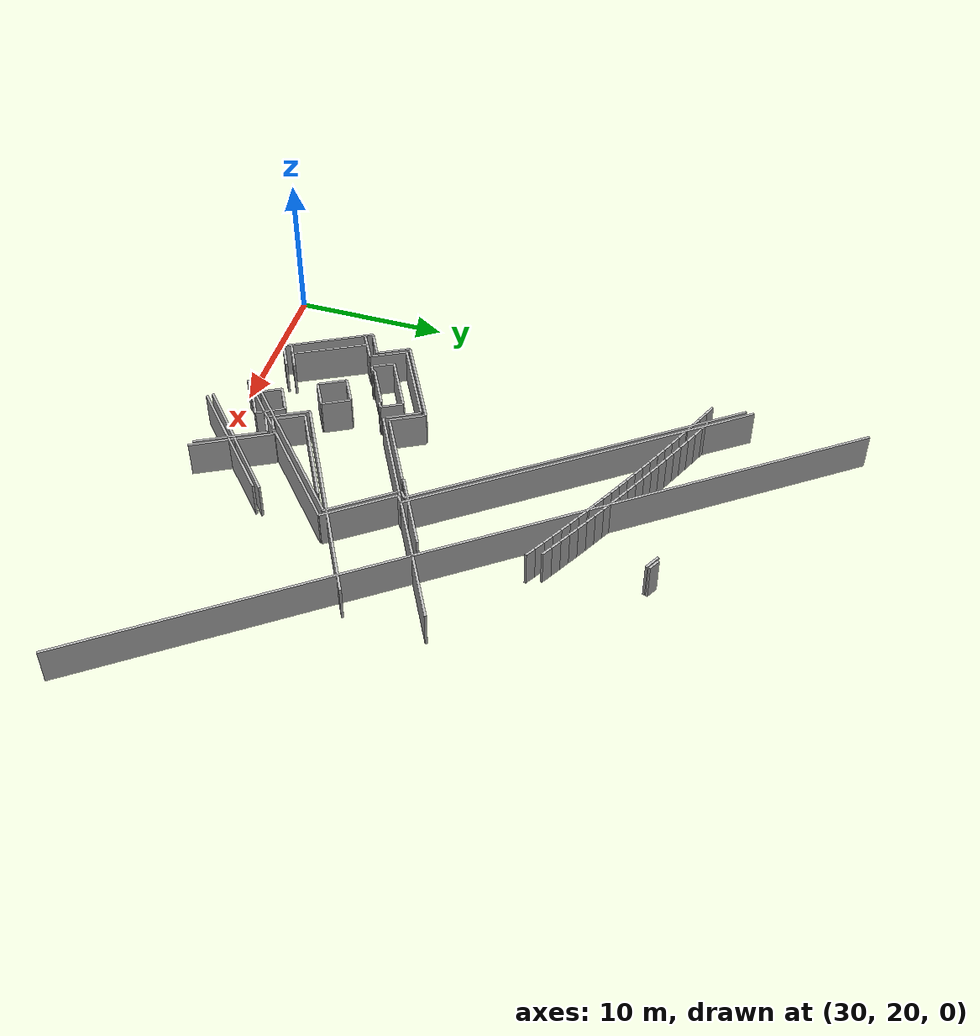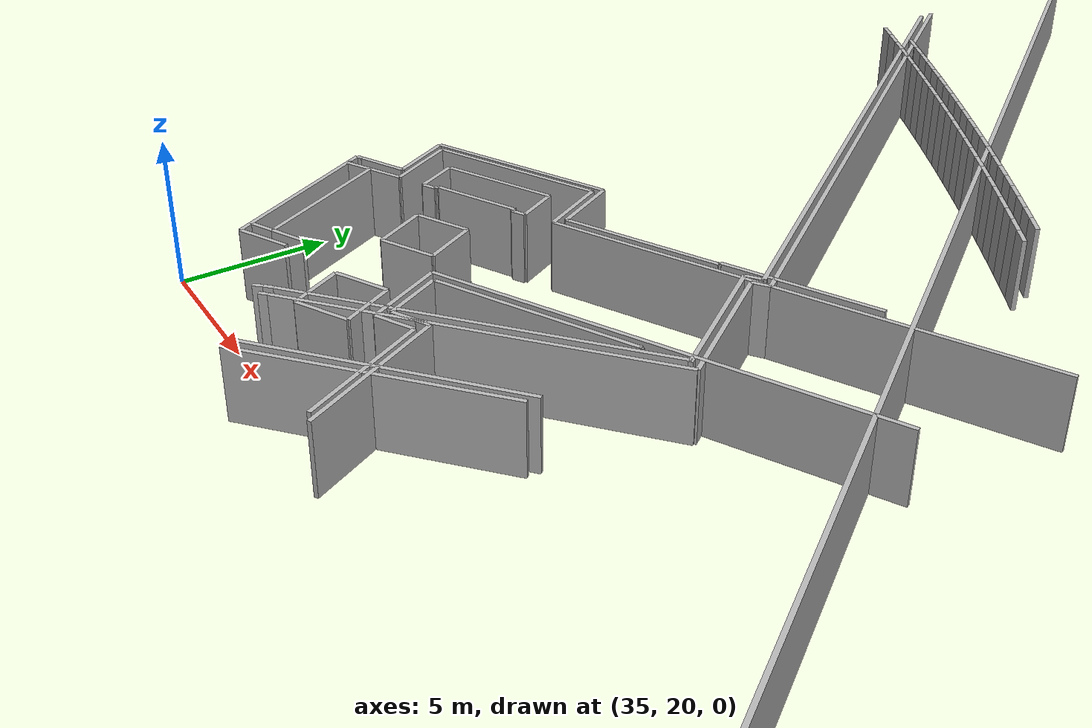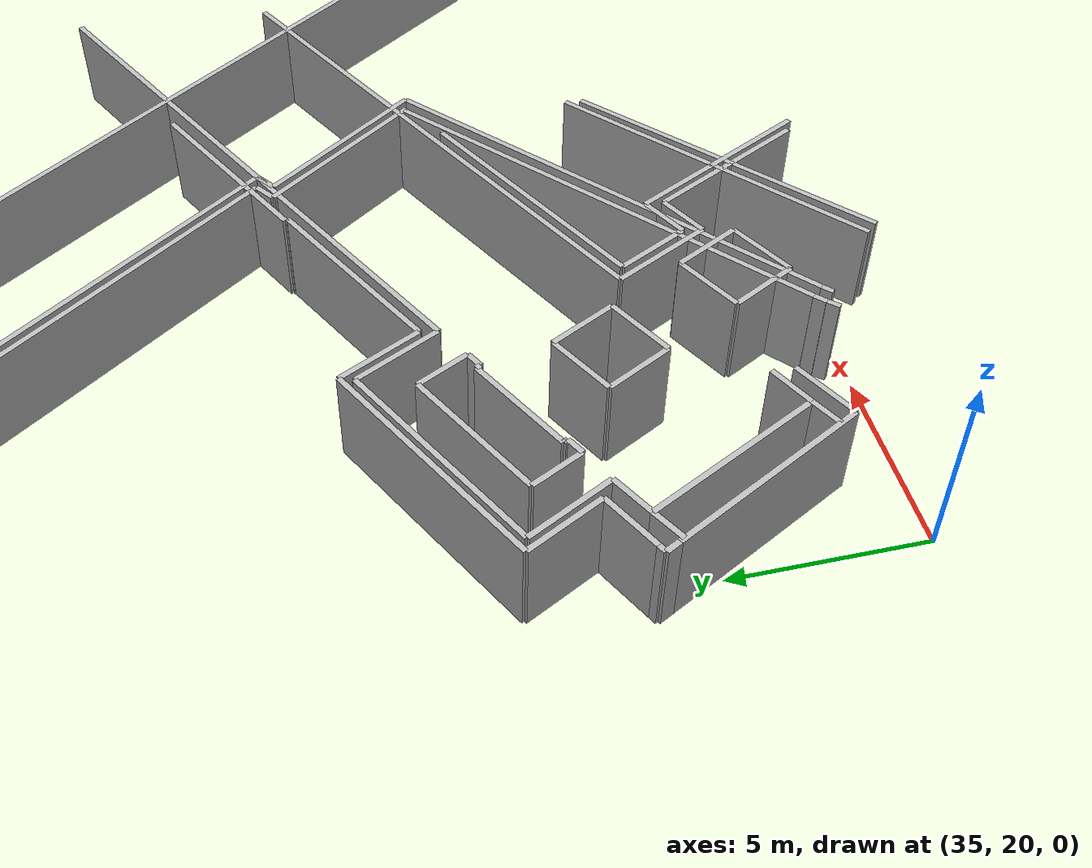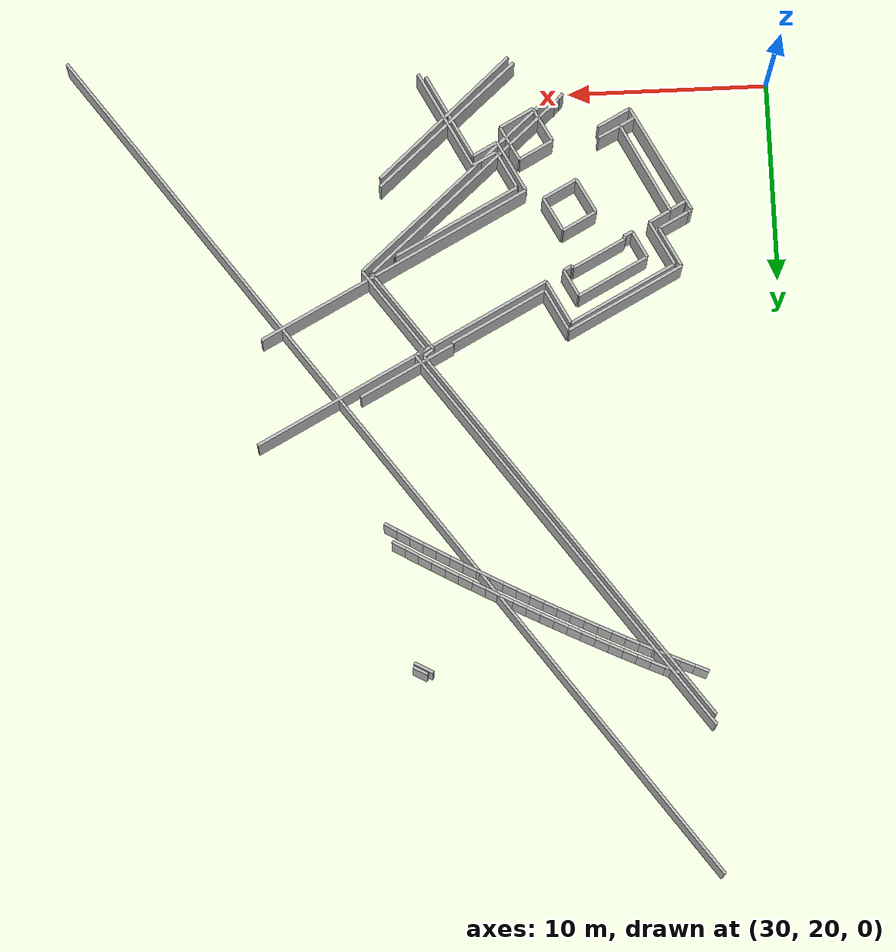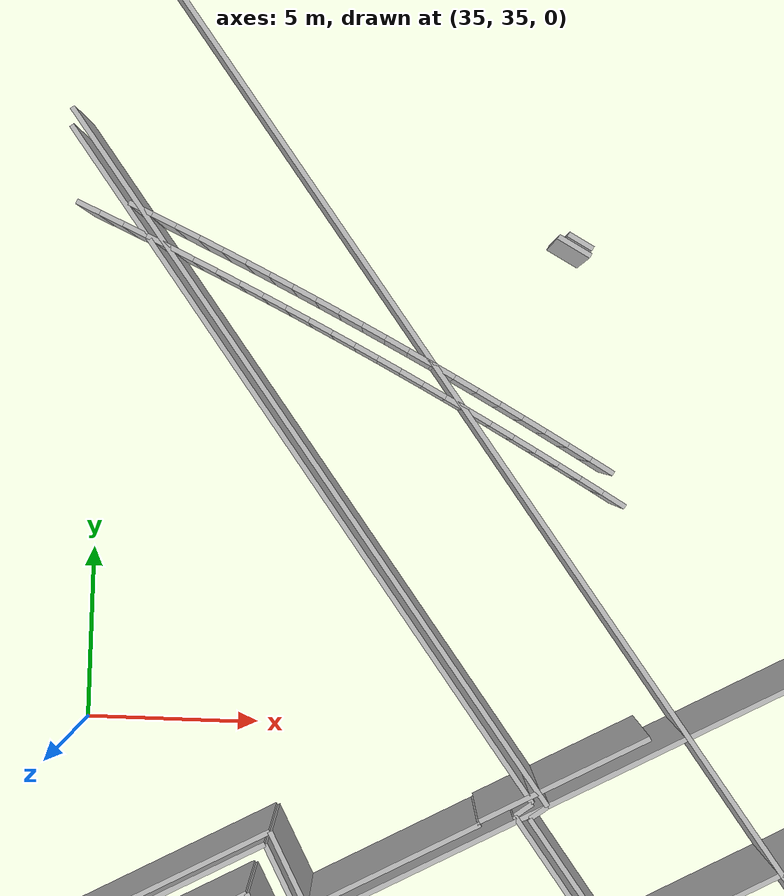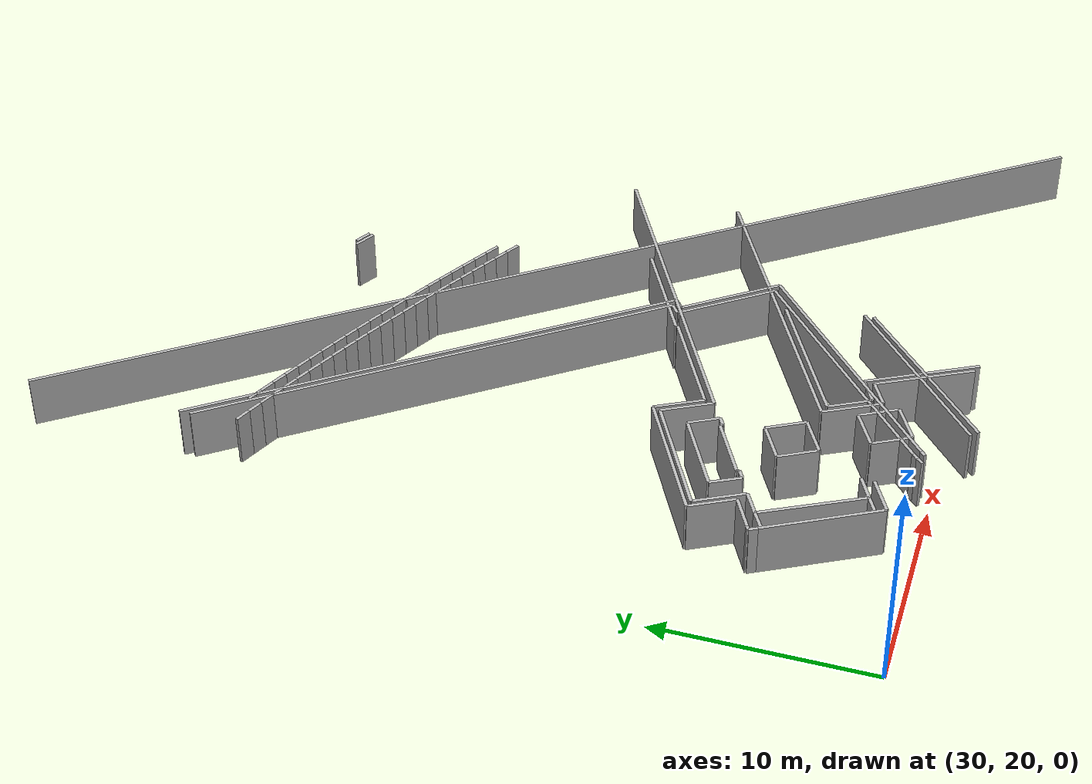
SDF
<sdf version="1.6">
 <model name="sps_0505">
  <static>1</static>
  <allow_auto_disable>0</allow_auto_disable>
  <link name="Wall106">
   <collision name="collision"><geometry><box><size>2.20003 0.15 2.5</size></box></geometry></collision>
   <visual name="visual">
    <geometry><box><size>2.20003 0.15 2.5</size></box></geometry>
    <transparency>0.0</transparency>
   </visual>
   <pose>35.4419 28.5977 1.25 0 0 -1.08942</pose>
  </link>
  <link name="Wall108">
   <collision name="collision"><geometry><box><size>2.08435 0.15 2.5</size></box></geometry></collision>
   <visual name="visual">
    <geometry><box><size>2.08435 0.15 2.5</size></box></geometry>
    <transparency>0.0</transparency>
   </visual>
   <pose>43.3747 24.2935 1.25 0 -0 2.05206</pose>
  </link>
  <link name="Wall112">
   <collision name="collision"><geometry><box><size>0.600333 0.15 2.5</size></box></geometry></collision>
   <visual name="visual">
    <geometry><box><size>0.600333 0.15 2.5</size></box></geometry>
    <transparency>0.0</transparency>
   </visual>
   <pose>48.0919 33.3364 1.25 0 -0 0.630284</pose>
  </link>
  <link name="Wall115">
   <collision name="collision"><geometry><box><size>9.20194 0.15 2.5</size></box></geometry></collision>
   <visual name="visual">
    <geometry><box><size>9.20194 0.15 2.5</size></box></geometry>
    <transparency>0.0</transparency>
   </visual>
   <pose>46.2363 21.8574 1.25 0 0 -2.42382</pose>
  </link>
  <link name="Wall116">
   <collision name="collision"><geometry><box><size>12.8173 0.15 2.5</size></box></geometry></collision>
   <visual name="visual">
    <geometry><box><size>12.8173 0.15 2.5</size></box></geometry>
    <transparency>0.0</transparency>
   </visual>
   <pose>45.9539 24.9295 1.25 0 -0 0.717764</pose>
  </link>
  <link name="Wall143">
   <collision name="collision"><geometry><box><size>51.876 0.15 2.5</size></box></geometry></collision>
   <visual name="visual">
    <geometry><box><size>51.876 0.15 2.5</size></box></geometry>
    <transparency>0.0</transparency>
   </visual>
   <pose>49.7676 38.8393 1.25 0 -0 2.2016</pose>
  </link>
  <link name="Wall499">
   <collision name="collision"><geometry><box><size>1.3478 0.15 2.5</size></box></geometry></collision>
   <visual name="visual">
    <geometry><box><size>1.3478 0.15 2.5</size></box></geometry>
    <transparency>0.0</transparency>
   </visual>
   <pose>44.4545 23.6816 1.25 0 0 -2.66043</pose>
  </link>
  <link name="Wall500">
   <collision name="collision"><geometry><box><size>5.39962 0.15 2.5</size></box></geometry></collision>
   <visual name="visual">
    <geometry><box><size>5.39962 0.15 2.5</size></box></geometry>
    <transparency>0.0</transparency>
   </visual>
   <pose>46.3018 21.6005 1.25 0 -0 2.05217</pose>
  </link>
  <link name="Wall501">
   <collision name="collision"><geometry><box><size>1.05047 0.15 2.5</size></box></geometry></collision>
   <visual name="visual">
    <geometry><box><size>1.05047 0.15 2.5</size></box></geometry>
    <transparency>0.0</transparency>
   </visual>
   <pose>48.6182 49.0603 1.25 0 -0 2.63246</pose>
  </link>
  <link name="Wall828">
   <collision name="collision"><geometry><box><size>1.82711 0.15 2.5</size></box></geometry></collision>
   <visual name="visual">
    <geometry><box><size>1.82711 0.15 2.5</size></box></geometry>
    <transparency>0.0</transparency>
   </visual>
   <pose>37.8931 21.8714 1.25 0 -0 0.481262</pose>
  </link>
  <link name="Wall838">
   <collision name="collision"><geometry><box><size>0.800268 0.15 2.5</size></box></geometry></collision>
   <visual name="visual">
    <geometry><box><size>0.800268 0.15 2.5</size></box></geometry>
    <transparency>0.0</transparency>
   </visual>
   <pose>48.7814 49.1981 1.25 0 -0 2.63315</pose>
  </link>
  <link name="Wall839">
   <collision name="collision"><geometry><box><size>12.5516 0.15 2.5</size></box></geometry></collision>
   <visual name="visual">
    <geometry><box><size>12.5516 0.15 2.5</size></box></geometry>
    <transparency>0.0</transparency>
   </visual>
   <pose>45.5907 25.1437 1.25 0 -0 0.717718</pose>
  </link>
  <link name="Wall1236">
   <collision name="collision"><geometry><box><size>1.20587 0.15 2.5</size></box></geometry></collision>
   <visual name="visual">
    <geometry><box><size>1.20587 0.15 2.5</size></box></geometry>
    <transparency>0.0</transparency>
   </visual>
   <pose>35.8755 27.0092 1.25 0 -0 0.495909</pose>
  </link>
  <link name="Wall1237">
   <collision name="collision"><geometry><box><size>0.410405 0.15 2.5</size></box></geometry></collision>
   <visual name="visual">
    <geometry><box><size>0.410405 0.15 2.5</size></box></geometry>
    <transparency>0.0</transparency>
   </visual>
   <pose>34.3734 26.5673 1.25 0 0 -1.08392</pose>
  </link>
  <link name="Wall1238">
   <collision name="collision"><geometry><box><size>5.58664 0.15 2.5</size></box></geometry></collision>
   <visual name="visual">
    <geometry><box><size>5.58664 0.15 2.5</size></box></geometry>
    <transparency>0.0</transparency>
   </visual>
   <pose>35.7764 23.9172 1.25 0 0 -1.08392</pose>
  </link>
  <link name="Wall1240">
   <collision name="collision"><geometry><box><size>2.34308 0.15 2.5</size></box></geometry></collision>
   <visual name="visual">
    <geometry><box><size>2.34308 0.15 2.5</size></box></geometry>
    <transparency>0.0</transparency>
   </visual>
   <pose>41.227 31.5385 1.25 0 -0 2.05214</pose>
  </link>
  <link name="Wall1535">
   <collision name="collision"><geometry><box><size>4.9612 0.15 2.5</size></box></geometry></collision>
   <visual name="visual">
    <geometry><box><size>4.9612 0.15 2.5</size></box></geometry>
    <transparency>0.0</transparency>
   </visual>
   <pose>36.477 24.5149 1.25 0 0 -1.09705</pose>
  </link>
  <link name="Wall1540">
   <collision name="collision"><geometry><box><size>5.27131 0.15 2.5</size></box></geometry></collision>
   <visual name="visual">
    <geometry><box><size>5.27131 0.15 2.5</size></box></geometry>
    <transparency>0.0</transparency>
   </visual>
   <pose>48.7901 34.2599 1.25 0 0 -2.66026</pose>
  </link>
  <link name="Wall1544">
   <collision name="collision"><geometry><box><size>15.156 0.15 2.5</size></box></geometry></collision>
   <visual name="visual">
    <geometry><box><size>15.156 0.15 2.5</size></box></geometry>
    <transparency>0.0</transparency>
   </visual>
   <pose>49.1872 28.8946 1.25 0 -0 0.481298</pose>
  </link>
  <link name="Wall1840">
   <collision name="collision"><geometry><box><size>0.931451 0.15 2.5</size></box></geometry></collision>
   <visual name="visual">
    <geometry><box><size>0.931451 0.15 2.5</size></box></geometry>
    <transparency>0.0</transparency>
   </visual>
   <pose>34.9387 26.495 1.25 0 0 -2.63174</pose>
  </link>
  <link name="Wall1841">
   <collision name="collision"><geometry><box><size>1.67167 0.15 2.5</size></box></geometry></collision>
   <visual name="visual">
    <geometry><box><size>1.67167 0.15 2.5</size></box></geometry>
    <transparency>0.0</transparency>
   </visual>
   <pose>35.2103 27.2358 1.25 0 0 -2.66037</pose>
  </link>
  <link name="Wall1842">
   <collision name="collision"><geometry><box><size>0.216618 0.15 2.5</size></box></geometry></collision>
   <visual name="visual">
    <geometry><box><size>0.216618 0.15 2.5</size></box></geometry>
    <transparency>0.0</transparency>
   </visual>
   <pose>34.3734 26.7988 1.25 0 0 -2.66037</pose>
  </link>
  <link name="Wall1843">
   <collision name="collision"><geometry><box><size>1.47797 0.15 2.5</size></box></geometry></collision>
   <visual name="visual">
    <geometry><box><size>1.47797 0.15 2.5</size></box></geometry>
    <transparency>0.0</transparency>
   </visual>
   <pose>36.9553 28.3842 1.25 0 -0 2.04192</pose>
  </link>
  <link name="Wall1844">
   <collision name="collision"><geometry><box><size>0.866235 0.15 2.5</size></box></geometry></collision>
   <visual name="visual">
    <geometry><box><size>0.866235 0.15 2.5</size></box></geometry>
    <transparency>0.0</transparency>
   </visual>
   <pose>37.2258 22.1051 1.25 0 0 -2.65529</pose>
  </link>
  <link name="Wall1845">
   <collision name="collision"><geometry><box><size>1.24537 0.15 2.5</size></box></geometry></collision>
   <visual name="visual">
    <geometry><box><size>1.24537 0.15 2.5</size></box></geometry>
    <transparency>0.0</transparency>
   </visual>
   <pose>38.1655 22.5861 1.25 0 -0 0.463867</pose>
  </link>
  <link name="Wall1849">
   <collision name="collision"><geometry><box><size>22.7968 0.15 2.5</size></box></geometry></collision>
   <visual name="visual">
    <geometry><box><size>22.7968 0.15 2.5</size></box></geometry>
    <transparency>0.0</transparency>
   </visual>
   <pose>41.1923 42.7836 1.25 0 0 -0.939982</pose>
  </link>
  <link name="Wall1850">
   <collision name="collision"><geometry><box><size>8.90177 0.15 2.5</size></box></geometry></collision>
   <visual name="visual">
    <geometry><box><size>8.90177 0.15 2.5</size></box></geometry>
    <transparency>0.0</transparency>
   </visual>
   <pose>46.3534 21.4957 1.25 0 0 -2.41261</pose>
  </link>
  <link name="Wall1856">
   <collision name="collision"><geometry><box><size>16.4819 0.15 2.5</size></box></geometry></collision>
   <visual name="visual">
    <geometry><box><size>16.4819 0.15 2.5</size></box></geometry>
    <transparency>0.0</transparency>
   </visual>
   <pose>48.9984 33.8667 1.25 0 -0 0.480617</pose>
  </link>
  <link name="Wall2183">
   <collision name="collision"><geometry><box><size>6.4893 0.15 2.5</size></box></geometry></collision>
   <visual name="visual">
    <geometry><box><size>6.4893 0.15 2.5</size></box></geometry>
    <transparency>0.0</transparency>
   </visual>
   <pose>37.8086 31.0748 1.25 0 0 -2.66027</pose>
  </link>
  <link name="Wall2186">
   <collision name="collision"><geometry><box><size>0.0823129 0.15 2.5</size></box></geometry></collision>
   <visual name="visual">
    <geometry><box><size>0.0823129 0.15 2.5</size></box></geometry>
    <transparency>0.0</transparency>
   </visual>
   <pose>46.4735 33.0035 1.25 0 0 -1.07465</pose>
  </link>
  <link name="Wall2187">
   <collision name="collision"><geometry><box><size>0.600149 0.15 2.5</size></box></geometry></collision>
   <visual name="visual">
    <geometry><box><size>0.600149 0.15 2.5</size></box></geometry>
    <transparency>0.0</transparency>
   </visual>
   <pose>47.6727 33.402 1.25 0 0 -2.51121</pose>
  </link>
  <link name="Wall2189">
   <collision name="collision"><geometry><box><size>23.5069 0.15 2.5</size></box></geometry></collision>
   <visual name="visual">
    <geometry><box><size>23.5069 0.15 2.5</size></box></geometry>
    <transparency>0.0</transparency>
   </visual>
   <pose>41.4019 43.0046 1.25 0 0 -0.939954</pose>
  </link>
  <link name="Wall2190">
   <collision name="collision"><geometry><box><size>0.0598912 0.15 2.5</size></box></geometry></collision>
   <visual name="visual">
    <geometry><box><size>0.0598912 0.15 2.5</size></box></geometry>
    <transparency>0.0</transparency>
   </visual>
   <pose>49.1197 28.4356 1.25 0 0 -1.04558</pose>
  </link>
  <link name="Wall2193">
   <collision name="collision"><geometry><box><size>4.97162 0.15 2.5</size></box></geometry></collision>
   <visual name="visual">
    <geometry><box><size>4.97162 0.15 2.5</size></box></geometry>
    <transparency>0.0</transparency>
   </visual>
   <pose>49.3155 31.152 1.25 0 -0 2.20154</pose>
  </link>
  <link name="Wall2573">
   <collision name="collision"><geometry><box><size>5.32916 0.15 2.5</size></box></geometry></collision>
   <visual name="visual">
    <geometry><box><size>5.32916 0.15 2.5</size></box></geometry>
    <transparency>0.0</transparency>
   </visual>
   <pose>44.1312 31.7337 1.25 0 0 -2.66025</pose>
  </link>
  <link name="Wall2577">
   <collision name="collision"><geometry><box><size>7.00848 0.15 2.5</size></box></geometry></collision>
   <visual name="visual">
    <geometry><box><size>7.00848 0.15 2.5</size></box></geometry>
    <transparency>0.0</transparency>
   </visual>
   <pose>45.9984 26.8394 1.25 0 -0 0.48126</pose>
  </link>
  <link name="Wall2578">
   <collision name="collision"><geometry><box><size>4.99699 0.15 2.5</size></box></geometry></collision>
   <visual name="visual">
    <geometry><box><size>4.99699 0.15 2.5</size></box></geometry>
    <transparency>0.0</transparency>
   </visual>
   <pose>48.9036 31.2073 1.25 0 0 -0.940096</pose>
  </link>
  <link name="Wall2579">
   <collision name="collision"><geometry><box><size>5.27131 0.15 2.5</size></box></geometry></collision>
   <visual name="visual">
    <geometry><box><size>5.27131 0.15 2.5</size></box></geometry>
    <transparency>0.0</transparency>
   </visual>
   <pose>48.7901 34.2599 1.25 0 0 -2.66026</pose>
  </link>
  <link name="Wall6908">
   <collision name="collision"><geometry><box><size>3.92629 0.15 2.5</size></box></geometry></collision>
   <visual name="visual">
    <geometry><box><size>3.92629 0.15 2.5</size></box></geometry>
    <transparency>0.0</transparency>
   </visual>
   <pose>38.3599 29.9517 1.25 0 -0 0.481411</pose>
  </link>
  <link name="Wall6909">
   <collision name="collision"><geometry><box><size>1.48354 0.15 2.5</size></box></geometry></collision>
   <visual name="visual">
    <geometry><box><size>1.48354 0.15 2.5</size></box></geometry>
    <transparency>0.0</transparency>
   </visual>
   <pose>40.4433 30.2032 1.25 0 0 -1.0895</pose>
  </link>
  <link name="Wall6910">
   <collision name="collision"><geometry><box><size>0.468034 0.15 2.5</size></box></geometry></collision>
   <visual name="visual">
    <geometry><box><size>0.468034 0.15 2.5</size></box></geometry>
    <transparency>0.0</transparency>
   </visual>
   <pose>40.5792 29.4373 1.25 0 0 -2.65998</pose>
  </link>
  <link name="Wall6911">
   <collision name="collision"><geometry><box><size>0.130165 0.15 2.5</size></box></geometry></collision>
   <visual name="visual">
    <geometry><box><size>0.130165 0.15 2.5</size></box></geometry>
    <transparency>0.0</transparency>
   </visual>
   <pose>40.3418 29.3866 1.25 0 -0 2.05143</pose>
  </link>
  <link name="Wall6912">
   <collision name="collision"><geometry><box><size>2.98804 0.15 2.5</size></box></geometry></collision>
   <visual name="visual">
    <geometry><box><size>2.98804 0.15 2.5</size></box></geometry>
    <transparency>0.0</transparency>
   </visual>
   <pose>38.9874 28.7527 1.25 0 0 -2.66032</pose>
  </link>
  <link name="Wall6913">
   <collision name="collision"><geometry><box><size>0.124542 0.15 2.5</size></box></geometry></collision>
   <visual name="visual">
    <geometry><box><size>0.124542 0.15 2.5</size></box></geometry>
    <transparency>0.0</transparency>
   </visual>
   <pose>37.6919 28.0059 1.25 0 0 -1.08983</pose>
  </link>
  <link name="Wall6914">
   <collision name="collision"><geometry><box><size>0.485291 0.15 2.5</size></box></geometry></collision>
   <visual name="visual">
    <geometry><box><size>0.485291 0.15 2.5</size></box></geometry>
    <transparency>0.0</transparency>
   </visual>
   <pose>37.5057 27.8382 1.25 0 0 -2.65955</pose>
  </link>
  <link name="Wall6931">
   <collision name="collision"><geometry><box><size>0.339995 0.15 2.5</size></box></geometry></collision>
   <visual name="visual">
    <geometry><box><size>0.339995 0.15 2.5</size></box></geometry>
    <transparency>0.0</transparency>
   </visual>
   <pose>40.5055 20.6533 1.25 0 -0 0.850818</pose>
  </link>
  <link name="Wall6932">
   <collision name="collision"><geometry><box><size>0.339949 0.15 2.5</size></box></geometry></collision>
   <visual name="visual">
    <geometry><box><size>0.339949 0.15 2.5</size></box></geometry>
    <transparency>0.0</transparency>
   </visual>
   <pose>40.7403 20.8987 1.25 0 -0 0.764195</pose>
  </link>
  <link name="Wall6988">
   <collision name="collision"><geometry><box><size>0.737416 0.15 2.5</size></box></geometry></collision>
   <visual name="visual">
    <geometry><box><size>0.737416 0.15 2.5</size></box></geometry>
    <transparency>0.0</transparency>
   </visual>
   <pose>49.5656 42.9492 1.25 0 -0 2.61253</pose>
  </link>
  <link name="Wall6989">
   <collision name="collision"><geometry><box><size>0.737245 0.15 2.5</size></box></geometry></collision>
   <visual name="visual">
    <geometry><box><size>0.737245 0.15 2.5</size></box></geometry>
    <transparency>0.0</transparency>
   </visual>
   <pose>48.9282 43.3198 1.25 0 -0 2.61737</pose>
  </link>
  <link name="Wall6990">
   <collision name="collision"><geometry><box><size>0.737327 0.15 2.5</size></box></geometry></collision>
   <visual name="visual">
    <geometry><box><size>0.737327 0.15 2.5</size></box></geometry>
    <transparency>0.0</transparency>
   </visual>
   <pose>48.2889 43.6872 1.25 0 -0 2.6225</pose>
  </link>
  <link name="Wall6991">
   <collision name="collision"><geometry><box><size>0.737368 0.15 2.5</size></box></geometry></collision>
   <visual name="visual">
    <geometry><box><size>0.737368 0.15 2.5</size></box></geometry>
    <transparency>0.0</transparency>
   </visual>
   <pose>47.6478 44.0513 1.25 0 -0 2.62776</pose>
  </link>
  <link name="Wall6992">
   <collision name="collision"><geometry><box><size>0.737222 0.15 2.5</size></box></geometry></collision>
   <visual name="visual">
    <geometry><box><size>0.737222 0.15 2.5</size></box></geometry>
    <transparency>0.0</transparency>
   </visual>
   <pose>47.0048 44.4121 1.25 0 -0 2.63268</pose>
  </link>
  <link name="Wall6993">
   <collision name="collision"><geometry><box><size>0.737238 0.15 2.5</size></box></geometry></collision>
   <visual name="visual">
    <geometry><box><size>0.737238 0.15 2.5</size></box></geometry>
    <transparency>0.0</transparency>
   </visual>
   <pose>46.36 44.7695 1.25 0 -0 2.63828</pose>
  </link>
  <link name="Wall6994">
   <collision name="collision"><geometry><box><size>0.73732 0.15 2.5</size></box></geometry></collision>
   <visual name="visual">
    <geometry><box><size>0.73732 0.15 2.5</size></box></geometry>
    <transparency>0.0</transparency>
   </visual>
   <pose>45.7132 45.1235 1.25 0 -0 2.64325</pose>
  </link>
  <link name="Wall6995">
   <collision name="collision"><geometry><box><size>0.737412 0.15 2.5</size></box></geometry></collision>
   <visual name="visual">
    <geometry><box><size>0.737412 0.15 2.5</size></box></geometry>
    <transparency>0.0</transparency>
   </visual>
   <pose>45.0646 45.4742 1.25 0 -0 2.64859</pose>
  </link>
  <link name="Wall6996">
   <collision name="collision"><geometry><box><size>0.737202 0.15 2.5</size></box></geometry></collision>
   <visual name="visual">
    <geometry><box><size>0.737202 0.15 2.5</size></box></geometry>
    <transparency>0.0</transparency>
   </visual>
   <pose>44.4142 45.8215 1.25 0 -0 2.65369</pose>
  </link>
  <link name="Wall6997">
   <collision name="collision"><geometry><box><size>0.737341 0.15 2.5</size></box></geometry></collision>
   <visual name="visual">
    <geometry><box><size>0.737341 0.15 2.5</size></box></geometry>
    <transparency>0.0</transparency>
   </visual>
   <pose>43.7621 46.1655 1.25 0 -0 2.65866</pose>
  </link>
  <link name="Wall6998">
   <collision name="collision"><geometry><box><size>0.737247 0.15 2.5</size></box></geometry></collision>
   <visual name="visual">
    <geometry><box><size>0.737247 0.15 2.5</size></box></geometry>
    <transparency>0.0</transparency>
   </visual>
   <pose>43.1082 46.5061 1.25 0 -0 2.6641</pose>
  </link>
  <link name="Wall6999">
   <collision name="collision"><geometry><box><size>0.737206 0.15 2.5</size></box></geometry></collision>
   <visual name="visual">
    <geometry><box><size>0.737206 0.15 2.5</size></box></geometry>
    <transparency>0.0</transparency>
   </visual>
   <pose>42.4527 46.8433 1.25 0 -0 2.66891</pose>
  </link>
  <link name="Wall7000">
   <collision name="collision"><geometry><box><size>0.737399 0.15 2.5</size></box></geometry></collision>
   <visual name="visual">
    <geometry><box><size>0.737399 0.15 2.5</size></box></geometry>
    <transparency>0.0</transparency>
   </visual>
   <pose>41.7952 47.1771 1.25 0 -0 2.67461</pose>
  </link>
  <link name="Wall7001">
   <collision name="collision"><geometry><box><size>0.737177 0.15 2.5</size></box></geometry></collision>
   <visual name="visual">
    <geometry><box><size>0.737177 0.15 2.5</size></box></geometry>
    <transparency>0.0</transparency>
   </visual>
   <pose>41.1361 47.5075 1.25 0 -0 2.67928</pose>
  </link>
  <link name="Wall7002">
   <collision name="collision"><geometry><box><size>0.737385 0.15 2.5</size></box></geometry></collision>
   <visual name="visual">
    <geometry><box><size>0.737385 0.15 2.5</size></box></geometry>
    <transparency>0.0</transparency>
   </visual>
   <pose>40.4753 47.8345 1.25 0 -0 2.68487</pose>
  </link>
  <link name="Wall7003">
   <collision name="collision"><geometry><box><size>0.737338 0.15 2.5</size></box></geometry></collision>
   <visual name="visual">
    <geometry><box><size>0.737338 0.15 2.5</size></box></geometry>
    <transparency>0.0</transparency>
   </visual>
   <pose>39.8127 48.158 1.25 0 -0 2.6899</pose>
  </link>
  <link name="Wall7004">
   <collision name="collision"><geometry><box><size>0.737257 0.15 2.5</size></box></geometry></collision>
   <visual name="visual">
    <geometry><box><size>0.737257 0.15 2.5</size></box></geometry>
    <transparency>0.0</transparency>
   </visual>
   <pose>39.1486 48.4781 1.25 0 -0 2.69509</pose>
  </link>
  <link name="Wall7005">
   <collision name="collision"><geometry><box><size>0.737304 0.15 2.5</size></box></geometry></collision>
   <visual name="visual">
    <geometry><box><size>0.737304 0.15 2.5</size></box></geometry>
    <transparency>0.0</transparency>
   </visual>
   <pose>38.4827 48.7948 1.25 0 -0 2.70016</pose>
  </link>
  <link name="Wall7006">
   <collision name="collision"><geometry><box><size>0.737454 0.15 2.5</size></box></geometry></collision>
   <visual name="visual">
    <geometry><box><size>0.737454 0.15 2.5</size></box></geometry>
    <transparency>0.0</transparency>
   </visual>
   <pose>37.8152 49.1081 1.25 0 -0 2.70538</pose>
  </link>
  <link name="Wall7007">
   <collision name="collision"><geometry><box><size>0.73724 0.15 2.5</size></box></geometry></collision>
   <visual name="visual">
    <geometry><box><size>0.73724 0.15 2.5</size></box></geometry>
    <transparency>0.0</transparency>
   </visual>
   <pose>37.1461 49.4179 1.25 0 -0 2.71053</pose>
  </link>
  <link name="Wall7008">
   <collision name="collision"><geometry><box><size>0.737238 0.15 2.5</size></box></geometry></collision>
   <visual name="visual">
    <geometry><box><size>0.737238 0.15 2.5</size></box></geometry>
    <transparency>0.0</transparency>
   </visual>
   <pose>36.4755 49.7242 1.25 0 -0 2.71572</pose>
  </link>
  <link name="Wall12921">
   <collision name="collision"><geometry><box><size>0.304939 0.15 2.5</size></box></geometry></collision>
   <visual name="visual">
    <geometry><box><size>0.304939 0.15 2.5</size></box></geometry>
    <transparency>0.0</transparency>
   </visual>
   <pose>41.0163 20.609 1.25 0 -0 0.764167</pose>
  </link>
  <link name="Wall12924">
   <collision name="collision"><geometry><box><size>4.68192 0.15 2.5</size></box></geometry></collision>
   <visual name="visual">
    <geometry><box><size>4.68192 0.15 2.5</size></box></geometry>
    <transparency>0.0</transparency>
   </visual>
   <pose>46.0923 21.4405 1.25 0 -0 2.0521</pose>
  </link>
  <link name="Wall12925">
   <collision name="collision"><geometry><box><size>1.38395 0.15 2.5</size></box></geometry></collision>
   <visual name="visual">
    <geometry><box><size>1.38395 0.15 2.5</size></box></geometry>
    <transparency>0.0</transparency>
   </visual>
   <pose>44.3953 23.1952 1.25 0 0 -2.66033</pose>
  </link>
  <link name="Wall12926">
   <collision name="collision"><geometry><box><size>2.83355 0.15 2.5</size></box></geometry></collision>
   <visual name="visual">
    <geometry><box><size>2.83355 0.15 2.5</size></box></geometry>
    <transparency>0.0</transparency>
   </visual>
   <pose>43.126 24.1307 1.25 0 -0 2.05213</pose>
  </link>
  <link name="Wall16717">
   <collision name="collision"><geometry><box><size>2.44638 0.15 2.5</size></box></geometry></collision>
   <visual name="visual">
    <geometry><box><size>2.44638 0.15 2.5</size></box></geometry>
    <transparency>0.0</transparency>
   </visual>
   <pose>41.1247 31.1409 1.25 0 -0 2.05215</pose>
  </link>
  <link name="Wall16718">
   <collision name="collision"><geometry><box><size>5.96271 0.15 2.5</size></box></geometry></collision>
   <visual name="visual">
    <geometry><box><size>5.96271 0.15 2.5</size></box></geometry>
    <transparency>0.0</transparency>
   </visual>
   <pose>37.9159 30.8448 1.25 0 0 -2.66024</pose>
  </link>
  <link name="Wall16719">
   <collision name="collision"><geometry><box><size>2.44635 0.15 2.5</size></box></geometry></collision>
   <visual name="visual">
    <geometry><box><size>2.44635 0.15 2.5</size></box></geometry>
    <transparency>0.0</transparency>
   </visual>
   <pose>35.8396 28.3803 1.25 0 0 -1.08946</pose>
  </link>
  <link name="Wall16720">
   <collision name="collision"><geometry><box><size>1.89978 0.15 2.5</size></box></geometry></collision>
   <visual name="visual">
    <geometry><box><size>1.89978 0.15 2.5</size></box></geometry>
    <transparency>0.0</transparency>
   </visual>
   <pose>41.473 22.0665 1.25 0 0 -1.08097</pose>
  </link>
  <link name="Wall16721">
   <collision name="collision"><geometry><box><size>1.89978 0.15 2.5</size></box></geometry></collision>
   <visual name="visual">
    <geometry><box><size>1.89978 0.15 2.5</size></box></geometry>
    <transparency>0.0</transparency>
   </visual>
   <pose>42.7581 21.6752 1.25 0 -0 0.489829</pose>
  </link>
  <link name="Wall16722">
   <collision name="collision"><geometry><box><size>1.8999 0.15 2.5</size></box></geometry></collision>
   <visual name="visual">
    <geometry><box><size>1.8999 0.15 2.5</size></box></geometry>
    <transparency>0.0</transparency>
   </visual>
   <pose>43.1493 22.9603 1.25 0 -0 2.06074</pose>
  </link>
  <link name="Wall16723">
   <collision name="collision"><geometry><box><size>1.89956 0.15 2.5</size></box></geometry></collision>
   <visual name="visual">
    <geometry><box><size>1.89956 0.15 2.5</size></box></geometry>
    <transparency>0.0</transparency>
   </visual>
   <pose>41.8642 23.3516 1.25 0 0 -2.6517</pose>
  </link>
  <link name="Wall16740">
   <collision name="collision"><geometry><box><size>0.729037 0.15 2.5</size></box></geometry></collision>
   <visual name="visual">
    <geometry><box><size>0.729037 0.15 2.5</size></box></geometry>
    <transparency>0.0</transparency>
   </visual>
   <pose>49.9209 42.0379 1.25 0 -0 2.60667</pose>
  </link>
  <link name="Wall16741">
   <collision name="collision"><geometry><box><size>0.729289 0.15 2.5</size></box></geometry></collision>
   <visual name="visual">
    <geometry><box><size>0.729289 0.15 2.5</size></box></geometry>
    <transparency>0.0</transparency>
   </visual>
   <pose>49.2926 42.4079 1.25 0 -0 2.61202</pose>
  </link>
  <link name="Wall16742">
   <collision name="collision"><geometry><box><size>0.729244 0.15 2.5</size></box></geometry></collision>
   <visual name="visual">
    <geometry><box><size>0.729244 0.15 2.5</size></box></geometry>
    <transparency>0.0</transparency>
   </visual>
   <pose>48.6623 42.7747 1.25 0 -0 2.61712</pose>
  </link>
  <link name="Wall16743">
   <collision name="collision"><geometry><box><size>0.729105 0.15 2.5</size></box></geometry></collision>
   <visual name="visual">
    <geometry><box><size>0.729105 0.15 2.5</size></box></geometry>
    <transparency>0.0</transparency>
   </visual>
   <pose>48.0301 43.1382 1.25 0 -0 2.62232</pose>
  </link>
  <link name="Wall16744">
   <collision name="collision"><geometry><box><size>0.729046 0.15 2.5</size></box></geometry></collision>
   <visual name="visual">
    <geometry><box><size>0.729046 0.15 2.5</size></box></geometry>
    <transparency>0.0</transparency>
   </visual>
   <pose>47.3963 43.4984 1.25 0 -0 2.62738</pose>
  </link>
  <link name="Wall16745">
   <collision name="collision"><geometry><box><size>0.729302 0.15 2.5</size></box></geometry></collision>
   <visual name="visual">
    <geometry><box><size>0.729302 0.15 2.5</size></box></geometry>
    <transparency>0.0</transparency>
   </visual>
   <pose>46.7605 43.8554 1.25 0 -0 2.63257</pose>
  </link>
  <link name="Wall16746">
   <collision name="collision"><geometry><box><size>0.729192 0.15 2.5</size></box></geometry></collision>
   <visual name="visual">
    <geometry><box><size>0.729192 0.15 2.5</size></box></geometry>
    <transparency>0.0</transparency>
   </visual>
   <pose>46.1227 44.2091 1.25 0 -0 2.63784</pose>
  </link>
  <link name="Wall16747">
   <collision name="collision"><geometry><box><size>0.729146 0.15 2.5</size></box></geometry></collision>
   <visual name="visual">
    <geometry><box><size>0.729146 0.15 2.5</size></box></geometry>
    <transparency>0.0</transparency>
   </visual>
   <pose>45.4833 44.5596 1.25 0 -0 2.64249</pose>
  </link>
  <link name="Wall16748">
   <collision name="collision"><geometry><box><size>0.729148 0.15 2.5</size></box></geometry></collision>
   <visual name="visual">
    <geometry><box><size>0.729148 0.15 2.5</size></box></geometry>
    <transparency>0.0</transparency>
   </visual>
   <pose>44.8422 44.9068 1.25 0 -0 2.6481</pose>
  </link>
  <link name="Wall16749">
   <collision name="collision"><geometry><box><size>0.729105 0.15 2.5</size></box></geometry></collision>
   <visual name="visual">
    <geometry><box><size>0.729105 0.15 2.5</size></box></geometry>
    <transparency>0.0</transparency>
   </visual>
   <pose>44.1992 45.2506 1.25 0 -0 2.65301</pose>
  </link>
  <link name="Wall16750">
   <collision name="collision"><geometry><box><size>0.729128 0.15 2.5</size></box></geometry></collision>
   <visual name="visual">
    <geometry><box><size>0.729128 0.15 2.5</size></box></geometry>
    <transparency>0.0</transparency>
   </visual>
   <pose>43.5545 45.5911 1.25 0 -0 2.65833</pose>
  </link>
  <link name="Wall16751">
   <collision name="collision"><geometry><box><size>0.729201 0.15 2.5</size></box></geometry></collision>
   <visual name="visual">
    <geometry><box><size>0.729201 0.15 2.5</size></box></geometry>
    <transparency>0.0</transparency>
   </visual>
   <pose>42.908 45.9283 1.25 0 -0 2.66338</pose>
  </link>
  <link name="Wall16752">
   <collision name="collision"><geometry><box><size>0.729075 0.15 2.5</size></box></geometry></collision>
   <visual name="visual">
    <geometry><box><size>0.729075 0.15 2.5</size></box></geometry>
    <transparency>0.0</transparency>
   </visual>
   <pose>42.2598 46.2622 1.25 0 -0 2.66847</pose>
  </link>
  <link name="Wall16753">
   <collision name="collision"><geometry><box><size>0.72924 0.15 2.5</size></box></geometry></collision>
   <visual name="visual">
    <geometry><box><size>0.72924 0.15 2.5</size></box></geometry>
    <transparency>0.0</transparency>
   </visual>
   <pose>41.6099 46.5928 1.25 0 -0 2.67357</pose>
  </link>
  <link name="Wall16754">
   <collision name="collision"><geometry><box><size>0.72907 0.15 2.5</size></box></geometry></collision>
   <visual name="visual">
    <geometry><box><size>0.72907 0.15 2.5</size></box></geometry>
    <transparency>0.0</transparency>
   </visual>
   <pose>40.9582 46.92 1.25 0 -0 2.67888</pose>
  </link>
  <link name="Wall16755">
   <collision name="collision"><geometry><box><size>0.729219 0.15 2.5</size></box></geometry></collision>
   <visual name="visual">
    <geometry><box><size>0.729219 0.15 2.5</size></box></geometry>
    <transparency>0.0</transparency>
   </visual>
   <pose>40.305 47.2438 1.25 0 -0 2.68393</pose>
  </link>
  <link name="Wall16756">
   <collision name="collision"><geometry><box><size>0.729197 0.15 2.5</size></box></geometry></collision>
   <visual name="visual">
    <geometry><box><size>0.729197 0.15 2.5</size></box></geometry>
    <transparency>0.0</transparency>
   </visual>
   <pose>39.65 47.5643 1.25 0 -0 2.68914</pose>
  </link>
  <link name="Wall16757">
   <collision name="collision"><geometry><box><size>0.72914 0.15 2.5</size></box></geometry></collision>
   <visual name="visual">
    <geometry><box><size>0.72914 0.15 2.5</size></box></geometry>
    <transparency>0.0</transparency>
   </visual>
   <pose>38.9933 47.8814 1.25 0 -0 2.69431</pose>
  </link>
  <link name="Wall16758">
   <collision name="collision"><geometry><box><size>0.729206 0.15 2.5</size></box></geometry></collision>
   <visual name="visual">
    <geometry><box><size>0.729206 0.15 2.5</size></box></geometry>
    <transparency>0.0</transparency>
   </visual>
   <pose>38.3351 48.1952 1.25 0 -0 2.69917</pose>
  </link>
  <link name="Wall16759">
   <collision name="collision"><geometry><box><size>0.729109 0.15 2.5</size></box></geometry></collision>
   <visual name="visual">
    <geometry><box><size>0.729109 0.15 2.5</size></box></geometry>
    <transparency>0.0</transparency>
   </visual>
   <pose>37.6753 48.5056 1.25 0 -0 2.70457</pose>
  </link>
  <link name="Wall16760">
   <collision name="collision"><geometry><box><size>0.729136 0.15 2.5</size></box></geometry></collision>
   <visual name="visual">
    <geometry><box><size>0.729136 0.15 2.5</size></box></geometry>
    <transparency>0.0</transparency>
   </visual>
   <pose>37.014 48.8125 1.25 0 -0 2.70966</pose>
  </link>
  <link name="Wall16761">
   <collision name="collision"><geometry><box><size>0.729287 0.15 2.5</size></box></geometry></collision>
   <visual name="visual">
    <geometry><box><size>0.729287 0.15 2.5</size></box></geometry>
    <transparency>0.0</transparency>
   </visual>
   <pose>36.351 49.1161 1.25 0 -0 2.71463</pose>
  </link>
  <link name="Wall16762">
   <collision name="collision"><geometry><box><size>0.729084 0.15 2.5</size></box></geometry></collision>
   <visual name="visual">
    <geometry><box><size>0.729084 0.15 2.5</size></box></geometry>
    <transparency>0.0</transparency>
   </visual>
   <pose>35.6865 49.4163 1.25 0 -0 2.71993</pose>
  </link>
  <link name="Wall16763">
   <collision name="collision"><geometry><box><size>0.72931 0.15 2.5</size></box></geometry></collision>
   <visual name="visual">
    <geometry><box><size>0.72931 0.15 2.5</size></box></geometry>
    <transparency>0.0</transparency>
   </visual>
   <pose>35.0203 49.713 1.25 0 -0 2.7252</pose>
  </link>
  <link name="Wall27778">
   <collision name="collision"><geometry><box><size>1.8999 0.15 2.5</size></box></geometry></collision>
   <visual name="visual">
    <geometry><box><size>1.8999 0.15 2.5</size></box></geometry>
    <transparency>0.0</transparency>
   </visual>
   <pose>39.4895 25.7883 1.25 0 0 -1.08085</pose>
  </link>
  <link name="Wall27779">
   <collision name="collision"><geometry><box><size>1.89978 0.15 2.5</size></box></geometry></collision>
   <visual name="visual">
    <geometry><box><size>1.89978 0.15 2.5</size></box></geometry>
    <transparency>0.0</transparency>
   </visual>
   <pose>40.7747 25.397 1.25 0 -0 0.489829</pose>
  </link>
  <link name="Wall27780">
   <collision name="collision"><geometry><box><size>1.8999 0.15 2.5</size></box></geometry></collision>
   <visual name="visual">
    <geometry><box><size>1.8999 0.15 2.5</size></box></geometry>
    <transparency>0.0</transparency>
   </visual>
   <pose>41.1659 26.6821 1.25 0 -0 2.06074</pose>
  </link>
  <link name="Wall27781">
   <collision name="collision"><geometry><box><size>1.89978 0.15 2.5</size></box></geometry></collision>
   <visual name="visual">
    <geometry><box><size>1.89978 0.15 2.5</size></box></geometry>
    <transparency>0.0</transparency>
   </visual>
   <pose>39.8806 27.0734 1.25 0 0 -2.65176</pose>
  </link>
 </model>
</sdf>
